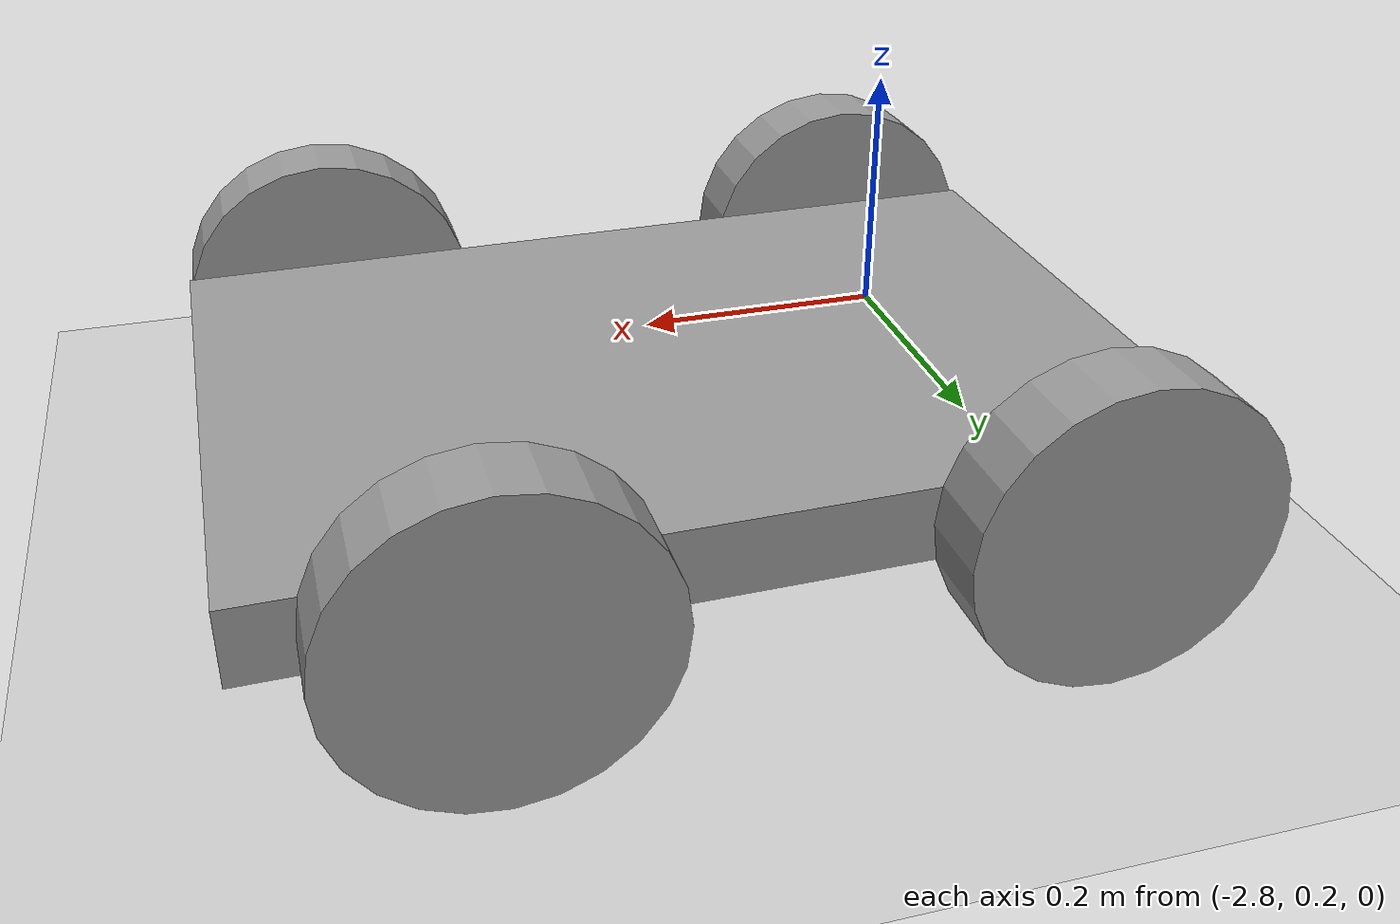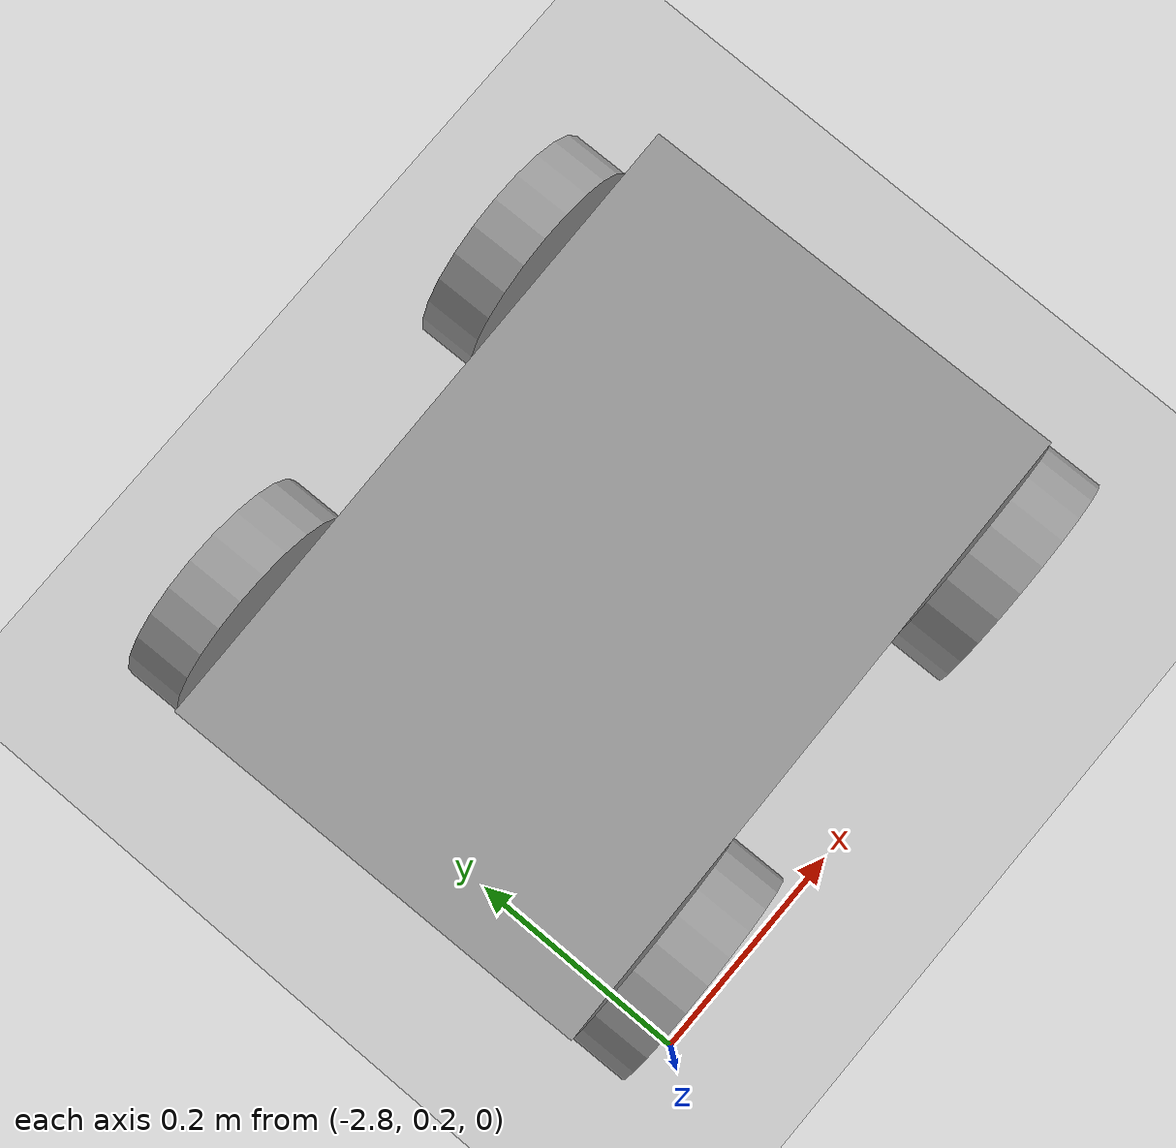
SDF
<sdf version="1.6">
 <world name="default">
  <model name="ground_plane">
   <static>1</static>
   <link name="link">
    <collision name="collision">
     <geometry><plane><normal>0 0 1</normal><size>100 100</size></plane></geometry>
     <surface>
      <contact><collide_bitmask>65535</collide_bitmask></contact>
      <friction><ode><mu>100</mu><mu2>50</mu2></ode></friction>
     </surface>
    </collision>
    <visual name="visual">
     <cast_shadows>0</cast_shadows>
     <geometry><plane><normal>0 0 1</normal><size>100 100</size></plane></geometry>
     <material>
      <script><uri>file://media/materials/scripts/gazebo.material</uri><name>Gazebo/Grey</name></script>
     </material>
    </visual>
   </link>
  </model>
  <model name="robot">
   <link name="link_5">
    <inertial>
     <mass>1</mass>
     <inertia>
      <ixx>0.166667</ixx>
      <ixy>0</ixy>
      <ixz>0</ixz>
      <iyy>0.166667</iyy>
      <iyz>0</iyz>
      <izz>0.166667</izz>
     </inertia>
    </inertial>
    <pose>0.039875 -0.14612 -0.029 0 -0 0</pose>
    <visual name="visual">
     <geometry><box><size>0.6 0.4 0.05</size></box></geometry>
     <material>
      <lighting>1</lighting>
      <script><uri>file://media/materials/scripts/gazebo.material</uri><name>Gazebo/Grey</name></script>
      <shader type="pixel"><normal_map>__default__</normal_map></shader>
      <ambient>0.3 0.3 0.3 1</ambient>
      <diffuse>0.7 0.7 0.7 1</diffuse>
      <specular>0.01 0.01 0.01 1</specular>
      <emissive>0 0 0 1</emissive>
     </material>
    </visual>
    <collision name="collision">
     <geometry><box><size>0.6 0.4 0.05</size></box></geometry>
     <surface>
      <friction>
       <ode><mu>1</mu><mu2>1</mu2><fdir1>0 0 0</fdir1><slip1>0</slip1><slip2>0</slip2></ode>
       <torsional>
        <coefficient>1</coefficient>
        <patch_radius>0</patch_radius>
        <surface_radius>0</surface_radius>
        <use_patch_radius>1</use_patch_radius>
        <ode><slip>0</slip></ode>
       </torsional>
      </friction>
      <bounce><restitution_coefficient>0</restitution_coefficient><threshold>1e+06</threshold></bounce>
      <contact>
       <collide_without_contact>0</collide_without_contact>
       <collide_without_contact_bitmask>1</collide_without_contact_bitmask>
       <collide_bitmask>1</collide_bitmask>
       <ode>
        <soft_cfm>0</soft_cfm>
        <soft_erp>0.2</soft_erp>
        <kp>1e+13</kp>
        <kd>1</kd>
        <max_vel>0.01</max_vel>
        <min_depth>0</min_depth>
       </ode>
       <bullet>
        <split_impulse>1</split_impulse>
        <split_impulse_penetration_threshold>-0.01</split_impulse_penetration_threshold>
        <soft_cfm>0</soft_cfm>
        <soft_erp>0.2</soft_erp>
        <kp>1e+13</kp>
        <kd>1</kd>
       </bullet>
      </contact>
     </surface>
    </collision>
   </link>
   <link name="link_6">
    <inertial>
     <mass>1</mass>
     <inertia><ixx>0.145833</ixx><ixy>0</ixy><ixz>0</ixz><iyy>0.145833</iyy><iyz>0</iyz><izz>0.125</izz></inertia>
    </inertial>
    <pose>0.199875 0.078889 -0.029 0 -0 0</pose>
    <visual name="visual">
     <pose>0 0 0 1.5707 -0 0</pose>
     <geometry><cylinder><radius>0.1</radius><length>0.05</length></cylinder></geometry>
     <material>
      <lighting>1</lighting>
      <script><uri>file://media/materials/scripts/gazebo.material</uri><name>Gazebo/Grey</name></script>
      <shader type="pixel"><normal_map>__default__</normal_map></shader>
      <ambient>0.3 0.3 0.3 1</ambient>
      <diffuse>0.7 0.7 0.7 1</diffuse>
      <specular>0.01 0.01 0.01 1</specular>
      <emissive>0 0 0 1</emissive>
     </material>
    </visual>
    <collision name="collision">
     <pose>0 0 0 1.5707 -0 0</pose>
     <geometry><cylinder><radius>0.1</radius><length>0.05</length></cylinder></geometry>
     <surface>
      <friction>
       <ode><mu>1</mu><mu2>1</mu2><fdir1>0 0 0</fdir1><slip1>0</slip1><slip2>0</slip2></ode>
       <torsional>
        <coefficient>1</coefficient>
        <patch_radius>0</patch_radius>
        <surface_radius>0</surface_radius>
        <use_patch_radius>1</use_patch_radius>
        <ode><slip>0</slip></ode>
       </torsional>
      </friction>
      <bounce><restitution_coefficient>0</restitution_coefficient><threshold>1e+06</threshold></bounce>
      <contact>
       <collide_without_contact>0</collide_without_contact>
       <collide_without_contact_bitmask>1</collide_without_contact_bitmask>
       <collide_bitmask>1</collide_bitmask>
       <ode>
        <soft_cfm>0</soft_cfm>
        <soft_erp>0.2</soft_erp>
        <kp>1e+13</kp>
        <kd>1</kd>
        <max_vel>0.01</max_vel>
        <min_depth>0</min_depth>
       </ode>
       <bullet>
        <split_impulse>1</split_impulse>
        <split_impulse_penetration_threshold>-0.01</split_impulse_penetration_threshold>
        <soft_cfm>0</soft_cfm>
        <soft_erp>0.2</soft_erp>
        <kp>1e+13</kp>
        <kd>1</kd>
       </bullet>
      </contact>
     </surface>
    </collision>
   </link>
   <link name="link_6_clone">
    <inertial>
     <mass>1</mass>
     <inertia><ixx>0.145833</ixx><ixy>0</ixy><ixz>0</ixz><iyy>0.145833</iyy><iyz>0</iyz><izz>0.125</izz></inertia>
    </inertial>
    <pose>-0.160125 -0.371129 -0.029 0 -0 0</pose>
    <visual name="visual">
     <pose>0 0 0 1.5707 -0 0</pose>
     <geometry><cylinder><radius>0.1</radius><length>0.05</length></cylinder></geometry>
     <material>
      <lighting>1</lighting>
      <script><uri>file://media/materials/scripts/gazebo.material</uri><name>Gazebo/Grey</name></script>
      <shader type="pixel"><normal_map>__default__</normal_map></shader>
      <ambient>0.3 0.3 0.3 1</ambient>
      <diffuse>0.7 0.7 0.7 1</diffuse>
      <specular>0.01 0.01 0.01 1</specular>
      <emissive>0 0 0 1</emissive>
     </material>
    </visual>
    <collision name="collision">
     <pose>0 0 0 1.5707 -0 0</pose>
     <geometry><cylinder><radius>0.1</radius><length>0.05</length></cylinder></geometry>
     <surface>
      <friction>
       <ode><mu>1</mu><mu2>1</mu2><fdir1>0 0 0</fdir1><slip1>0</slip1><slip2>0</slip2></ode>
       <torsional>
        <coefficient>1</coefficient>
        <patch_radius>0</patch_radius>
        <surface_radius>0</surface_radius>
        <use_patch_radius>1</use_patch_radius>
        <ode><slip>0</slip></ode>
       </torsional>
      </friction>
      <bounce><restitution_coefficient>0</restitution_coefficient><threshold>1e+06</threshold></bounce>
      <contact>
       <collide_without_contact>0</collide_without_contact>
       <collide_without_contact_bitmask>1</collide_without_contact_bitmask>
       <collide_bitmask>1</collide_bitmask>
       <ode>
        <soft_cfm>0</soft_cfm>
        <soft_erp>0.2</soft_erp>
        <kp>1e+13</kp>
        <kd>1</kd>
        <max_vel>0.01</max_vel>
        <min_depth>0</min_depth>
       </ode>
       <bullet>
        <split_impulse>1</split_impulse>
        <split_impulse_penetration_threshold>-0.01</split_impulse_penetration_threshold>
        <soft_cfm>0</soft_cfm>
        <soft_erp>0.2</soft_erp>
        <kp>1e+13</kp>
        <kd>1</kd>
       </bullet>
      </contact>
     </surface>
    </collision>
   </link>
   <link name="link_6_clone_0">
    <inertial>
     <mass>1</mass>
     <inertia><ixx>0.145833</ixx><ixy>0</ixy><ixz>0</ixz><iyy>0.145833</iyy><iyz>0</iyz><izz>0.125</izz></inertia>
    </inertial>
    <pose>-0.160125 0.078889 -0.029 0 -0 0</pose>
    <visual name="visual">
     <pose>0 0 0 1.5707 -0 0</pose>
     <geometry><cylinder><radius>0.1</radius><length>0.05</length></cylinder></geometry>
     <material>
      <lighting>1</lighting>
      <script><uri>file://media/materials/scripts/gazebo.material</uri><name>Gazebo/Grey</name></script>
      <shader type="pixel"><normal_map>__default__</normal_map></shader>
      <ambient>0.3 0.3 0.3 1</ambient>
      <diffuse>0.7 0.7 0.7 1</diffuse>
      <specular>0.01 0.01 0.01 1</specular>
      <emissive>0 0 0 1</emissive>
     </material>
    </visual>
    <collision name="collision">
     <pose>0 0 0 1.5707 -0 0</pose>
     <geometry><cylinder><radius>0.1</radius><length>0.05</length></cylinder></geometry>
     <surface>
      <friction>
       <ode><mu>1</mu><mu2>1</mu2><fdir1>0 0 0</fdir1><slip1>0</slip1><slip2>0</slip2></ode>
       <torsional>
        <coefficient>1</coefficient>
        <patch_radius>0</patch_radius>
        <surface_radius>0</surface_radius>
        <use_patch_radius>1</use_patch_radius>
        <ode><slip>0</slip></ode>
       </torsional>
      </friction>
      <bounce><restitution_coefficient>0</restitution_coefficient><threshold>1e+06</threshold></bounce>
      <contact>
       <collide_without_contact>0</collide_without_contact>
       <collide_without_contact_bitmask>1</collide_without_contact_bitmask>
       <collide_bitmask>1</collide_bitmask>
       <ode>
        <soft_cfm>0</soft_cfm>
        <soft_erp>0.2</soft_erp>
        <kp>1e+13</kp>
        <kd>1</kd>
        <max_vel>0.01</max_vel>
        <min_depth>0</min_depth>
       </ode>
       <bullet>
        <split_impulse>1</split_impulse>
        <split_impulse_penetration_threshold>-0.01</split_impulse_penetration_threshold>
        <soft_cfm>0</soft_cfm>
        <soft_erp>0.2</soft_erp>
        <kp>1e+13</kp>
        <kd>1</kd>
       </bullet>
      </contact>
     </surface>
    </collision>
   </link>
   <link name="link_6_clone_clone">
    <inertial>
     <mass>1</mass>
     <inertia><ixx>0.145833</ixx><ixy>0</ixy><ixz>0</ixz><iyy>0.145833</iyy><iyz>0</iyz><izz>0.125</izz></inertia>
    </inertial>
    <pose>0.239875 -0.371129 -0.029 0 -0 0</pose>
    <visual name="visual">
     <pose>0 0 0 1.5707 -0 0</pose>
     <geometry><cylinder><radius>0.1</radius><length>0.05</length></cylinder></geometry>
     <material>
      <lighting>1</lighting>
      <script><uri>file://media/materials/scripts/gazebo.material</uri><name>Gazebo/Grey</name></script>
      <shader type="pixel"><normal_map>__default__</normal_map></shader>
      <ambient>0.3 0.3 0.3 1</ambient>
      <diffuse>0.7 0.7 0.7 1</diffuse>
      <specular>0.01 0.01 0.01 1</specular>
      <emissive>0 0 0 1</emissive>
     </material>
    </visual>
    <collision name="collision">
     <pose>0 0 0 1.5707 -0 0</pose>
     <geometry><cylinder><radius>0.1</radius><length>0.05</length></cylinder></geometry>
     <surface>
      <friction>
       <ode><mu>1</mu><mu2>1</mu2><fdir1>0 0 0</fdir1><slip1>0</slip1><slip2>0</slip2></ode>
       <torsional>
        <coefficient>1</coefficient>
        <patch_radius>0</patch_radius>
        <surface_radius>0</surface_radius>
        <use_patch_radius>1</use_patch_radius>
        <ode><slip>0</slip></ode>
       </torsional>
      </friction>
      <bounce><restitution_coefficient>0</restitution_coefficient><threshold>1e+06</threshold></bounce>
      <contact>
       <collide_without_contact>0</collide_without_contact>
       <collide_without_contact_bitmask>1</collide_without_contact_bitmask>
       <collide_bitmask>1</collide_bitmask>
       <ode>
        <soft_cfm>0</soft_cfm>
        <soft_erp>0.2</soft_erp>
        <kp>1e+13</kp>
        <kd>1</kd>
        <max_vel>0.01</max_vel>
        <min_depth>0</min_depth>
       </ode>
       <bullet>
        <split_impulse>1</split_impulse>
        <split_impulse_penetration_threshold>-0.01</split_impulse_penetration_threshold>
        <soft_cfm>0</soft_cfm>
        <soft_erp>0.2</soft_erp>
        <kp>1e+13</kp>
        <kd>1</kd>
       </bullet>
      </contact>
     </surface>
    </collision>
   </link>
   <joint name="link_5_JOINT_10" type="revolute">
    <parent>link_5</parent>
    <child>link_6_clone_clone</child>
    <axis>
     <xyz>0 -1 0</xyz>
     <limit>
      <lower>-1.79769e+308</lower>
      <upper>1.79769e+308</upper>
      <effort>-1</effort>
      <velocity>-1</velocity>
     </limit>
     <dynamics>
      <spring_reference>0</spring_reference>
      <spring_stiffness>0</spring_stiffness>
      <damping>0</damping>
     </dynamics>
     <use_parent_model_frame>0</use_parent_model_frame>
    </axis>
    <physics>
     <ode><limit><cfm>0</cfm><erp>0.2</erp></limit><suspension><cfm>0</cfm><erp>0.2</erp></suspension></ode>
    </physics>
   </joint>
   <joint name="link_5_JOINT_7" type="revolute">
    <parent>link_5</parent>
    <child>link_6_clone_0</child>
    <axis>
     <xyz>0 1 0</xyz>
     <limit>
      <lower>-1.79769e+308</lower>
      <upper>1.79769e+308</upper>
      <effort>-1</effort>
      <velocity>-1</velocity>
     </limit>
     <dynamics>
      <spring_reference>0</spring_reference>
      <spring_stiffness>0</spring_stiffness>
      <damping>0</damping>
      <friction>0</friction>
     </dynamics>
     <use_parent_model_frame>0</use_parent_model_frame>
    </axis>
    <physics>
     <ode><limit><cfm>0</cfm><erp>0.2</erp></limit><suspension><cfm>0</cfm><erp>0.2</erp></suspension></ode>
    </physics>
   </joint>
   <joint name="link_5_JOINT_8" type="revolute">
    <parent>link_5</parent>
    <child>link_6</child>
    <axis>
     <xyz>0 1 0</xyz>
     <limit>
      <lower>-1.79769e+308</lower>
      <upper>1.79769e+308</upper>
      <effort>-1</effort>
      <velocity>-1</velocity>
     </limit>
     <dynamics>
      <spring_reference>0</spring_reference>
      <spring_stiffness>0</spring_stiffness>
      <damping>0</damping>
      <friction>0</friction>
     </dynamics>
     <use_parent_model_frame>0</use_parent_model_frame>
    </axis>
    <physics>
     <ode><limit><cfm>0</cfm><erp>0.2</erp></limit><suspension><cfm>0</cfm><erp>0.2</erp></suspension></ode>
    </physics>
   </joint>
   <joint name="link_5_JOINT_9" type="revolute">
    <parent>link_5</parent>
    <child>link_6_clone</child>
    <axis>
     <xyz>0 -1 0</xyz>
     <limit>
      <lower>-1.79769e+308</lower>
      <upper>1.79769e+308</upper>
      <effort>-1</effort>
      <velocity>-1</velocity>
     </limit>
     <dynamics>
      <spring_reference>0</spring_reference>
      <spring_stiffness>0</spring_stiffness>
      <damping>0</damping>
     </dynamics>
     <use_parent_model_frame>0</use_parent_model_frame>
    </axis>
    <physics>
     <ode><limit><cfm>0</cfm><erp>0.2</erp></limit><suspension><cfm>0</cfm><erp>0.2</erp></suspension></ode>
    </physics>
   </joint>
   <static>0</static>
   <pose>-2.58474 0.619492 0.129003 4e-06 5e-06 0.016051</pose>
  </model>
 </world>
</sdf>
